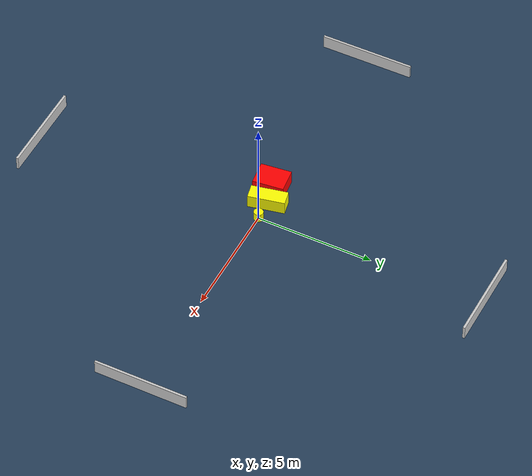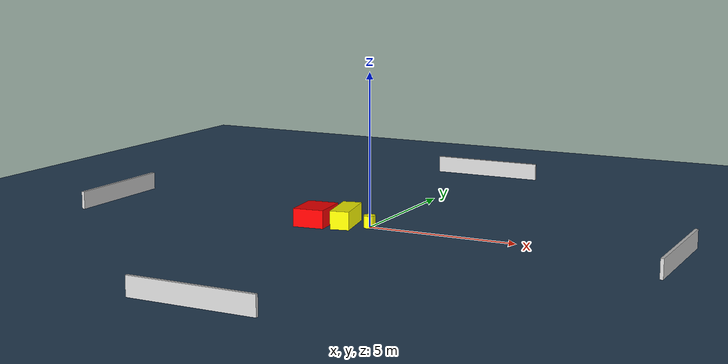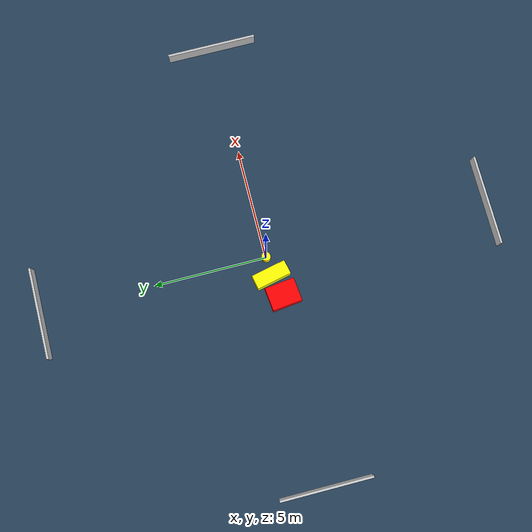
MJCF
<?xml version="1.0" ?>
<mujoco model="generated_environment">
  <option timestep="0.01" integrator="RK4" cone="elliptic"/>
  <default>
    <geom density="1"/>
  </default>
  <asset>
    <texture builtin="gradient" height="3072" name="skybox" rgb1="0.3 0.5 0.7" rgb2="0 0 0" type="skybox" width="512"/>
    <texture builtin="checker" height="300" name="groundplane" rgb1="0.2 0.3 0.4" rgb2="0.1 0.2 0.3" type="2d" width="300"/>
    <material name="groundplane" reflectance="0.2" texrepeat="5 5" texture="groundplane"/>
  </asset>
  <worldbody>
    <light dir="0 0 -1" directional="true" pos="0 0 1.5"/>
    <geom condim="3" friction="0.5 0.005 0.001" material="groundplane" name="floor" pos="0 0 0" size="0 0 0.05" type="plane"/>
    <body name="walls">
      <geom name="wall_1" condim="4" pos="-10.0 0.0 0.3" rgba="0.800000011920929 0.800000011920929 0.800000011920929 1.0" size="0.05 2.0 0.3" type="box"/>
      <geom name="wall_2" condim="4" pos="10.0 0.0 0.3" rgba="0.800000011920929 0.800000011920929 0.800000011920929 1.0" size="0.05 2.0 0.3" type="box"/>
      <geom name="wall_3" condim="4" pos="0.0 -10.0 0.3" rgba="0.800000011920929 0.800000011920929 0.800000011920929 1.0" size="2.0 0.05 0.3" type="box"/>
      <geom name="wall_4" condim="4" pos="0.0 10.0 0.3" rgba="0.800000011920929 0.800000011920929 0.800000011920929 1.0" size="2.0 0.05 0.3" type="box"/>
    </body>
    <body name="robot">
      <joint name="joint_x" type="slide" pos="0 0 0" axis="1 0 0"/>
      <joint name="joint_y" type="slide" pos="0 0 0" axis="0 1 0"/>
      <geom name="robot" type="cylinder" pos="0.0 0.0 0.2" size="0.2 0.2 0.0" mass="5.0" friction="1.0 0.005 0.0001" condim="4" rgba="1.0 1.0 0.0 1.0"/>
    </body>
    <body name="obstacle_1_movable">
      <geom name="obstacle_1_movable" condim="4" pos="-0.8534077412509548 -0.009719998268231672 0.3" euler="0 0 192.05776739221682" friction="0.0 0.005 0.001" rgba="1.0 1.0 0.0 1.0" size="0.31449292690230624 0.7788568054288074 0.3" type="box" mass="0.1"/>
      <joint type="free"/>
    </body>
    <body name="obstacle_2_static">
      <geom name="obstacle_2_static" condim="4" pos="-1.806302679348202 -0.30730111378080094 0.3" euler="0 0 6.391433623506164" friction="0.0 0.005 0.001" rgba="1.0 0.0 0.0 1.0" size="0.5160603049275666 0.6598495490887337 0.3" type="box"/>
    </body>
  </worldbody>
  <actuator>
    <motor name="actuator_x" joint="joint_x" gear="1" ctrlrange="-1 1"/>
    <motor name="actuator_y" joint="joint_y" gear="1" ctrlrange="-1 1"/>
  </actuator>
</mujoco>
